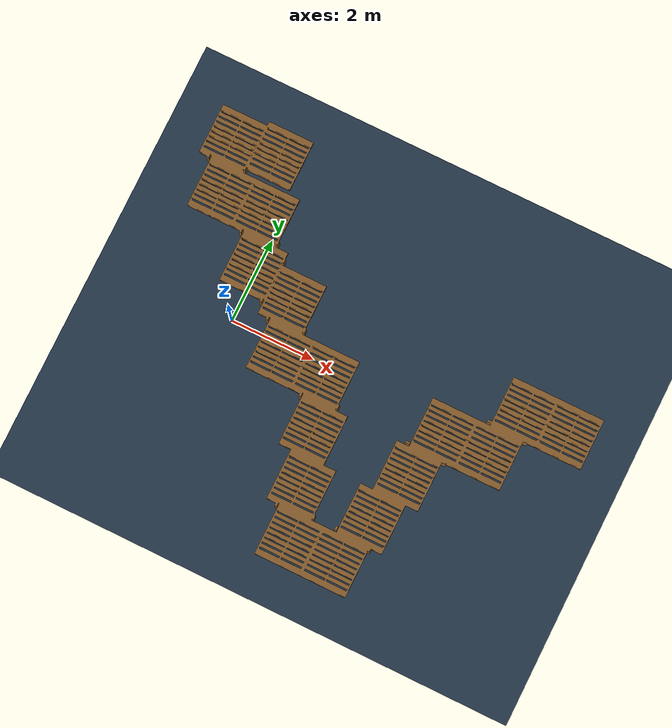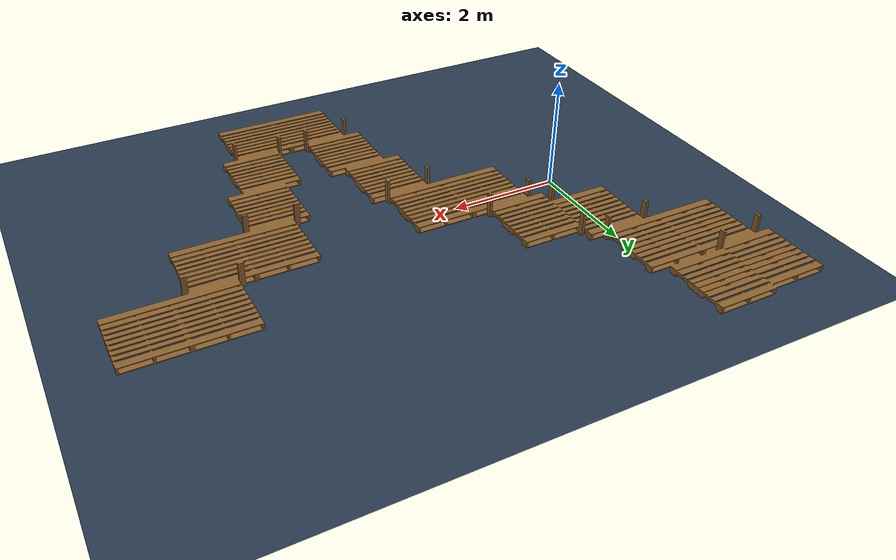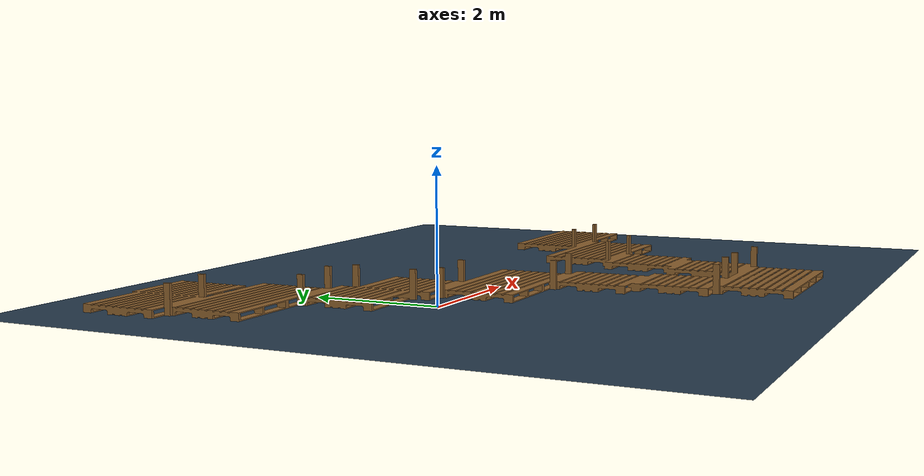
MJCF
<mujoco model="aesir_solo_pallets">

  <compiler angle="radian" autolimits="true" meshdir="../meshes"/>
  <option timestep="0.002" iterations="50" tolerance="1e-10"
          solver="Newton" integrator="implicitfast"
          cone="elliptic" impratio="10"/>

  <visual>
    <headlight diffuse="0.6 0.6 0.6" ambient="0.3 0.3 0.3" specular="0 0 0"/>
    <rgba haze="0.15 0.25 0.35 1"/>
    <global azimuth="120" elevation="-20"/>
    <map znear="0.01" zfar="50"/>
  </visual>

  <asset>
    <mesh name="pallets_mesh" file="pallets/base_link.stl" scale="0.001 0.001 0.001"/>

    <texture name="texplane" type="2d" builtin="checker"
             rgb1=".2 .3 .4" rgb2=".1 0.15 0.2" width="512" height="512"/>
    <material name="matplane" reflectance="0.3" texture="texplane"
              texrepeat="4 4" texuniform="true"/>
  </asset>

  <worldbody>
    <light directional="true" diffuse=".8 .8 .8" specular=".2 .2 .2"
           pos="0 0 5" dir="0 0 -1"/>
    <light directional="false" pos="3.5 0 3" dir="-1 0 -1" diffuse="0.4 0.4 0.4"/>
    <geom name="floor" type="plane" size="12 12 0.1" pos="0 0 0" material="matplane"/>

    <camera name="cam_overview" pos="3.5 0 7" euler="0 0 -1.5707" fovy="65" mode="fixed"/>

    <body name="pallets_mesh_body" pos="3 -3.49 0">
      <geom name="pallets_visual" type="mesh" mesh="pallets_mesh"
            contype="0" conaffinity="0" rgba="0.55 0.38 0.18 1"/>
    </body>
  </worldbody>

</mujoco>
